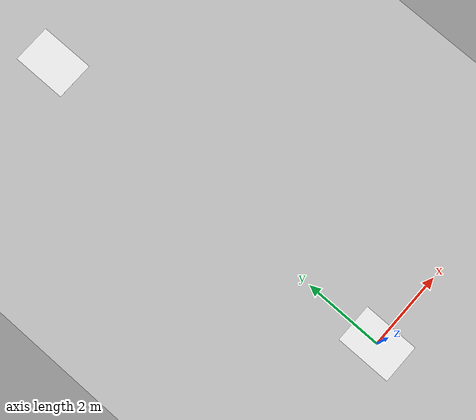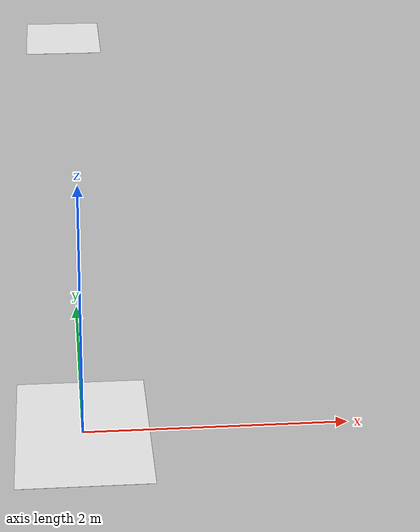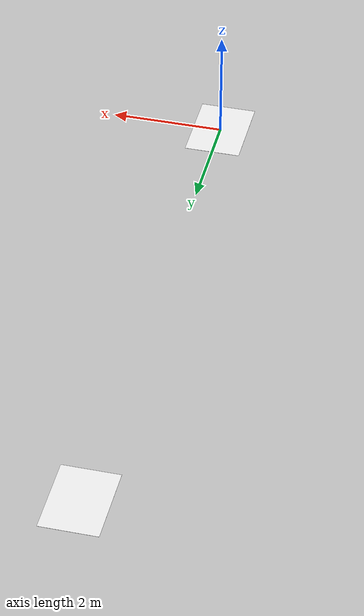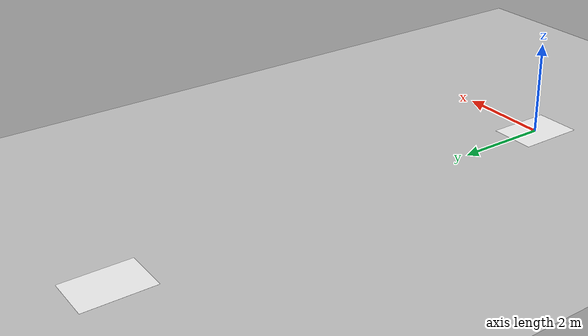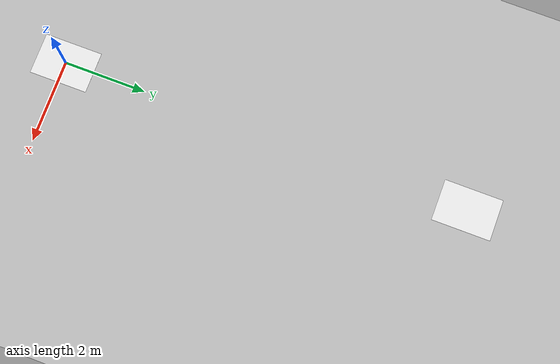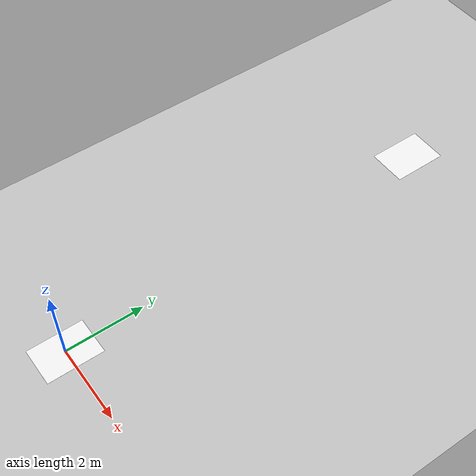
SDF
<?xml version="1.0" encoding="UTF-8"?>
<sdf version="1.9">
  <world name="apriltag">
    <physics type="ode">
      <max_step_size>0.004</max_step_size>
      <real_time_factor>1.0</real_time_factor>
      <real_time_update_rate>250</real_time_update_rate>
    </physics>
    <gravity>0 0 -9.8</gravity>
    <magnetic_field>6e-06 2.3e-05 -4.2e-05</magnetic_field>
    <atmosphere type="adiabatic"/>
    <scene>
      <grid>false</grid>
      <ambient>0.4 0.4 0.4 1</ambient>
      <background>0.7 0.7 0.7 1</background>
      <shadows>true</shadows>
    </scene>
    <model name="ground_plane">
      <static>true</static>
      <link name="link">
        <collision name="collision">
          <geometry>
            <plane>
              <normal>0 0 1</normal>
              <size>1 1</size>
            </plane>
          </geometry>
          <surface>
            <friction>
              <ode/>
            </friction>
            <bounce/>
            <contact/>
          </surface>
        </collision>
        <visual name="visual">
          <geometry>
            <plane>
              <normal>0 0 1</normal>
              <size>500 500</size>
            </plane>
          </geometry>
          <material>
            <ambient>0.8 0.8 0.8 1</ambient>
            <diffuse>0.8 0.8 0.8 1</diffuse>
            <specular>0.8 0.8 0.8 1</specular>
          </material>
        </visual>
        <pose>0 0 0 0 -0 0</pose>
        <inertial>
          <pose>0 0 0 0 -0 0</pose>
          <mass>1</mass>
          <inertia>
            <ixx>1</ixx>
            <ixy>0</ixy>
            <ixz>0</ixz>
            <iyy>1</iyy>
            <iyz>0</iyz>
            <izz>1</izz>
          </inertia>
        </inertial>
        <enable_wind>false</enable_wind>
      </link>
      <pose>0 0 0 0 -0 0</pose>
      <self_collide>false</self_collide>
    </model>

    <!-- AprilTag 36h11 ID 9 at origin -->
    <include>
      <uri>model://apriltag/36h11_9</uri>
      <name>apriltag_9</name>
      <pose>0 0 0.01 0 0 0</pose>
    </include>

    <!-- AprilTag 36h11 ID 11 at x=10 y=10 -->
    <include>
      <uri>model://apriltag/36h11_11</uri>
      <name>apriltag_11</name>
      <pose>0 10 0.01 0 0 0</pose>
      <size>1 1 0.5</size>
    </include>

    <light name="sunUTC" type="directional">
      <pose>0 0 500 0 -0 0</pose>
      <cast_shadows>true</cast_shadows>
      <intensity>1</intensity>
      <direction>0.001 0.625 -0.78</direction>
      <diffuse>0.904 0.904 0.904 1</diffuse>
      <specular>0.271 0.271 0.271 1</specular>
      <attenuation>
        <range>2000</range>
        <linear>0</linear>
        <constant>1</constant>
        <quadratic>0</quadratic>
      </attenuation>
      <spot>
        <inner_angle>0</inner_angle>
        <outer_angle>0</outer_angle>
        <falloff>0</falloff>
      </spot>
    </light>
    <spherical_coordinates>
      <surface_model>EARTH_WGS84</surface_model>
      <world_frame_orientation>ENU</world_frame_orientation>
      <latitude_deg>47.397971057728974</latitude_deg>
      <longitude_deg> 8.546163739800146</longitude_deg>
      <elevation>0</elevation>
    </spherical_coordinates>
  </world>
</sdf>

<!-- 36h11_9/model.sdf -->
<sdf version='1.9'>
  <model name='apriltag_36h11_9'>
    <static>true</static>
    <pose>0 0 0.001 0 0 0</pose>
    <link name='base'>
      <visual name='base_visual'>
        <geometry>
          <plane>
            <normal>0 0 1</normal>
            <size>1 1.414</size>
          </plane>
        </geometry>
        <material>
          <diffuse>1 1 1 1</diffuse>
          <specular>0.4 0.4 0.4 1</specular>
          <pbr>
            <metal>
              <albedo_map>model://apriltag/36h11_9/apriltag_36h11_9.png</albedo_map>
            </metal>
          </pbr>
        </material>
      </visual>
    </link>
  </model>
</sdf>

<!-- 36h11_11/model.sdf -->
<sdf version='1.9'>
  <model name='apriltag_36h11_11'>
    <static>true</static>
    <pose>0 0 0.001 0 0 0</pose>
    <link name='base'>
      <visual name='base_visual'>
        <geometry>
          <plane>
            <normal>0 0 1</normal>
            <size>1 1.414</size>
          </plane>
        </geometry>
        <material>
          <diffuse>1 1 1 1</diffuse>
          <specular>0.4 0.4 0.4 1</specular>
          <pbr>
            <metal>
              <albedo_map>model://apriltag/36h11_11/apriltag_36h11_11.png</albedo_map>
            </metal>
          </pbr>
        </material>
      </visual>
    </link>
  </model>
</sdf>
